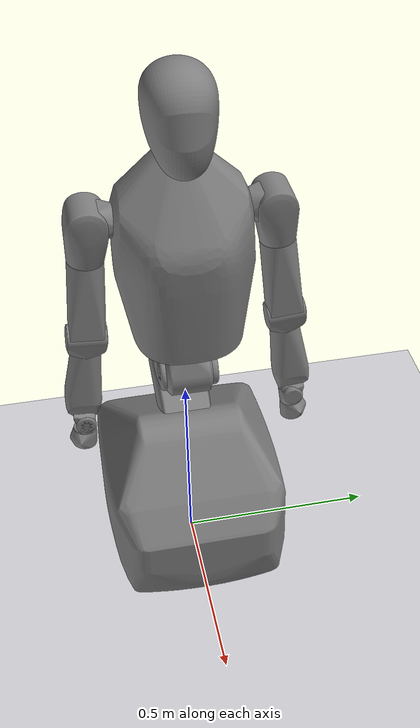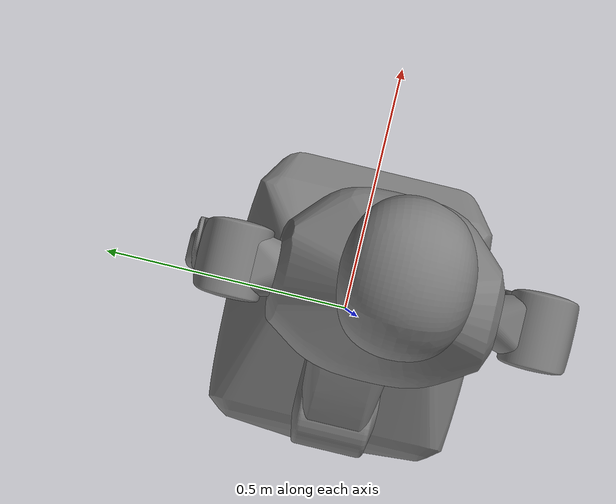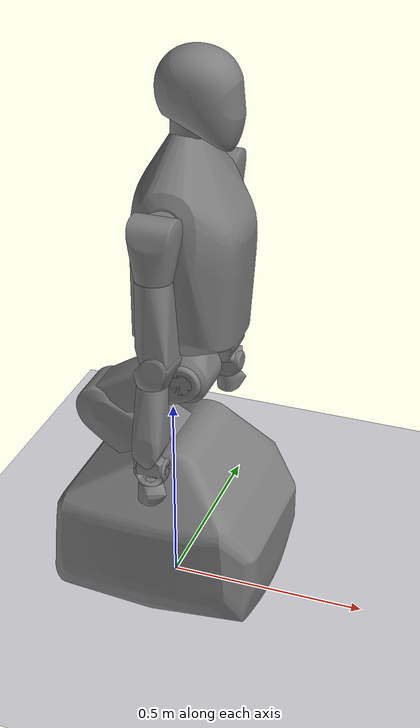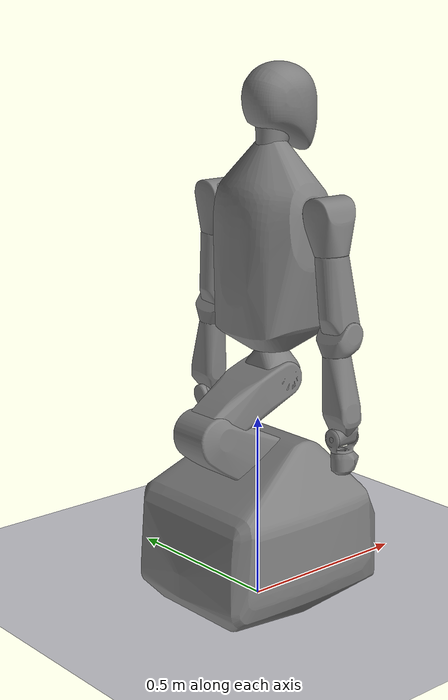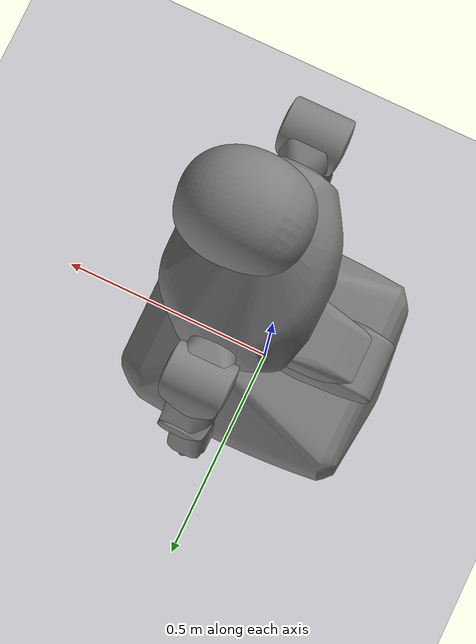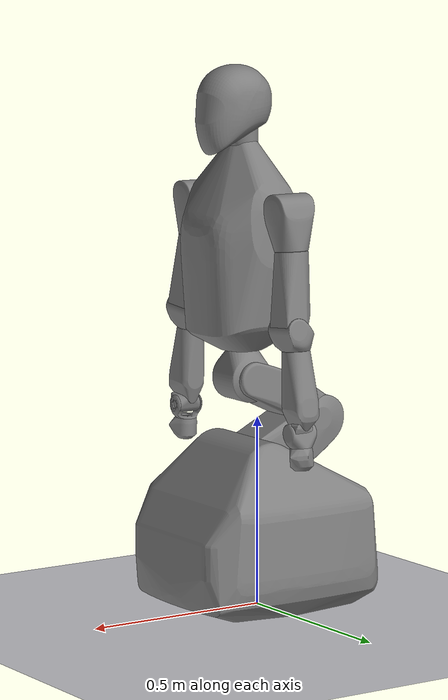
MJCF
<mujoco model="tianyi2_urdf">
  <default>
    <default class="robot">
      <default class="motor_332">
        <joint armature="0.5" damping="1" frictionloss="0.3" actuatorfrcrange="-500 500" />
        <motor ctrlrange="-500.0 500.0" />
      </default>
      <default class="motor_91">
        <joint armature="0.5" damping="1" frictionloss="0.3" actuatorfrcrange="-200 200" />
        <motor ctrlrange="-200 200.0" />
      </default>
      <default class="motor_6_3">
        <joint armature="0.1" damping="1" frictionloss="0.3" actuatorfrcrange="-20 20" />
        <motor ctrlrange="-20 20.0" />
      </default>
      <default class="motor_95">
        <joint armature="0.5" damping="1" frictionloss="0.3" actuatorfrcrange="-200 200" />
        <motor ctrlrange="-200 200.0" />
      </default>
      <default class="motor_24">
        <joint armature="0.5" damping="1" frictionloss="0.3" actuatorfrcrange="-100 100" />
        <motor ctrlrange="-100 100.0" />
      </default>
      <default class="motor_35">
        <joint armature="0.5" damping="1" frictionloss="0.3" actuatorfrcrange="-35.0 35.0" />
        <motor ctrlrange="-35.0 35.0" />
      </default>
      <default class="motor_143">
        <joint frictionloss="0.5" damping="1.0" actuatorfrcrange="-143.0 143.0" />
        <motor ctrlrange="-143.0 143.0" />
      </default>
      <default class="visual">
        <geom material="visualgeom" contype="0" conaffinity="0" group="2" />
      </default>
      <default class="collision">
        <geom material="collision_material" condim="3" contype="1" conaffinity="1" priority="1" group="1" solref="0.005 1" solimp="0.99 0.999 1e-05" friction="1 0.01 0.01" />
      </default>
    </default>
  </default>

  <compiler angle="radian" />

  <visual>
    <headlight diffuse="0.3 0.3 0.3" ambient="0.2 0.2 0.2" specular="0.1 0.1 0.1" />
    <rgba haze="0.15 0.25 0.35 1" />
    <global azimuth="120" elevation="-20" />
    <quality shadowsize="4096" />
    <map znear="0.01" zfar="50" />
  </visual>

  <asset>
    <texture name="grid_tex" type="2d" builtin="checker" rgb1="0.9 0.9 0.92" rgb2="0.75 0.75 0.78" width="512" height="512" mark="edge" markrgb="0.6 0.6 0.63" />
    <texture name="skybox_tex" type="skybox" builtin="gradient" rgb1="0.4 0.6 0.8" rgb2="0.95 0.95 1.0" width="800" height="800" />
    <material name="floor_mat" texture="grid_tex" texrepeat="8 8" texuniform="true" reflectance="0.15" specular="0.3" shininess="0.5" />
    <material name="base_material" rgba="0.752941176470588 0.752941176470588 0.752941176470588 1" />
    <material name="default_material" rgba="0.7 0.7 0.7 1" />
    <material name="collision_material" rgba="0.5 0.5 0.5 0.9" />
    <mesh name="base.STL" file="./meshes_convex/base.STL" />
    <mesh name="first_leg_pitch_link.STL" file="./meshes_convex/first_leg_pitch_link.STL" />
    <mesh name="second_leg_pitch_link.STL" file="./meshes_convex/second_leg_pitch_link.STL" />
    <mesh name="waist_pitch_link.STL" file="./meshes_convex/waist_pitch_link.STL" />
    <mesh name="waist_yaw_link.STL" file="./meshes_convex/waist_yaw_link.STL" />
    <mesh name="head_yaw_link.STL" file="./meshes_convex/head_yaw_link.STL" />
    <mesh name="head_pitch_link.STL" file="./meshes_convex/head_pitch_link.STL" />
    <mesh name="head_roll_link.STL" file="./meshes_convex/head_roll_link.STL" />
    <mesh name="camera_head_link.STL" file="./meshes_convex/camera_head_link.STL" />
    <mesh name="shoulder_pitch_l_link.STL" file="./meshes_convex/shoulder_pitch_l_link.STL" />
    <mesh name="shoulder_roll_l_link.STL" file="./meshes_convex/shoulder_roll_l_link.STL" />
    <mesh name="shoulder_yaw_l_link.STL" file="./meshes_convex/shoulder_yaw_l_link.STL" />
    <mesh name="elbow_pitch_l_link.STL" file="./meshes_convex/elbow_pitch_l_link.STL" />
    <mesh name="elbow_yaw_l_link.STL" file="./meshes_convex/elbow_yaw_l_link.STL" />
    <mesh name="wrist_pitch_l_link.STL" file="./meshes_convex/wrist_pitch_l_link.STL" />
    <mesh name="wrist_roll_l_link.STL" file="./meshes_convex/wrist_roll_l_link.STL" />
    <mesh name="left_tcp_link.STL" file="./meshes_convex/left_tcp_link.STL" />
    <mesh name="shoulder_pitch_r_link.STL" file="./meshes_convex/shoulder_pitch_r_link.STL" />
    <mesh name="shoulder_roll_r_link.STL" file="./meshes_convex/shoulder_roll_r_link.STL" />
    <mesh name="shoulder_yaw_r_link.STL" file="./meshes_convex/shoulder_yaw_r_link.STL" />
    <mesh name="elbow_pitch_r_link.STL" file="./meshes_convex/elbow_pitch_r_link.STL" />
    <mesh name="elbow_yaw_r_link.STL" file="./meshes_convex/elbow_yaw_r_link.STL" />
    <mesh name="wrist_pitch_r_link.STL" file="./meshes_convex/wrist_pitch_r_link.STL" />
    <mesh name="wrist_roll_r_link.STL" file="./meshes_convex/wrist_roll_r_link.STL" />
    <mesh name="right_tcp_link.STL" file="./meshes_convex/right_tcp_link.STL" />
  </asset>

  <worldbody>
    <!-- 灯光 -->
    <light name="top_light" pos="0 0 4" dir="0 0 -1" diffuse="0.6 0.6 0.6" specular="0.3 0.3 0.3" directional="true" castshadow="true" />
    <light name="front_light" pos="2 2 3" dir="-0.4 -0.4 -0.8" diffuse="0.4 0.4 0.45" specular="0.2 0.2 0.2" directional="false" castshadow="true" />
    <light name="back_light" pos="-2 -2 3" dir="0.4 0.4 -0.8" diffuse="0.25 0.25 0.3" specular="0.1 0.1 0.1" directional="false" castshadow="false" />

    <!-- 地板 -->
    <geom name="floor" type="plane" size="10 10 0.1" pos="0 0 0" quat="1 0 0 0" material="floor_mat" friction="1 0.005 0.0001" condim="3" />

    <body name="base" pos="0.00000000 0.00000000 0.00000000" quat="1 0 0 0" childclass="robot">
      <inertial pos="-0.00067 -0.002625 0.150395" quat="1.0 0.0 0.0 0.0" mass="47.555667" diaginertia="1.277779 1.293166 1.385346" />
      <geom name="base_collision" pos="0 0 0" quat="1.0 0.0 0.0 0.0" type="mesh" mesh="base.STL" class="collision" />
      <geom name="base_visual" pos="0 0 0" quat="1.0 0.0 0.0 0.0" material="base_material" type="mesh" mesh="base.STL" class="visual" />
      <body name="first_leg_pitch_link" pos="0.049182 0 0.37" quat="1.0 0.0 0.0 0.0">
        <joint name="first_leg_pitch_joint" type="hinge" ref="0.0" class="motor_332" range="-0.41887902047863906 0.9075712110370514" axis="0 1 0" />
        <inertial pos="-0.105847 -0.000632 0.041305" quat="1.0 0.0 0.0 0.0" mass="2.460134" diaginertia="0.012918 0.028707 0.027239" />
        <geom name="first_leg_pitch_link_collision" pos="0 0 0" quat="1.0 0.0 0.0 0.0" type="mesh" mesh="first_leg_pitch_link.STL" class="collision" />
        <geom name="first_leg_pitch_link_visual" pos="0 0 0" quat="1.0 0.0 0.0 0.0" material="base_material" type="mesh" mesh="first_leg_pitch_link.STL" class="visual" />
        <body name="second_leg_pitch_link" pos="-0.20785 0 0.12" quat="1.0 0.0 0.0 0.0">
          <joint name="second_leg_pitch_joint" type="hinge" ref="0.0" class="motor_332" range="-1.7453292519943295 0.5061454830783556" axis="0 1 0" />
          <inertial pos="0.056775 0.000389 0.045258" quat="1.0 0.0 0.0 0.0" mass="2.430846" diaginertia="0.011853 0.025086 0.022169" />
          <geom name="second_leg_pitch_link_collision" pos="0 0 0" quat="1.0 0.0 0.0 0.0" type="mesh" mesh="second_leg_pitch_link.STL" class="collision" />
          <geom name="second_leg_pitch_link_visual" pos="0 0 0" quat="1.0 0.0 0.0 0.0" material="base_material" type="mesh" mesh="second_leg_pitch_link.STL" class="visual" />
          <body name="waist_pitch_link" pos="0.20785 0 0.12" quat="1.0 0.0 0.0 0.0">
            <joint name="waist_pitch_joint" type="hinge" ref="0.0" class="motor_332" range="-0.7853981633974483 2.0943951023931953" axis="0 1 0" />
            <inertial pos="8e-06 0.012369 0.001276" quat="1.0 0.0 0.0 0.0" mass="3.38238" diaginertia="0.005589 0.006064 0.005334" />
            <geom name="waist_pitch_link_collision" pos="0 0 0" quat="1.0 0.0 0.0 0.0" type="mesh" mesh="waist_pitch_link.STL" class="collision" />
            <geom name="waist_pitch_link_visual" pos="0 0 0" quat="1.0 0.0 0.0 0.0" material="base_material" type="mesh" mesh="waist_pitch_link.STL" class="visual" />
            <body name="waist_yaw_link" pos="0 0 0.07" quat="1.0 0.0 0.0 0.0">
              <joint name="waist_yaw_joint" type="hinge" ref="0.0" class="motor_143" range="-2.9670597283903604 3.141592653589793" axis="0 0 1" />
              <inertial pos="0.009196 -0.000592 0.251379" quat="1.0 0.0 0.0 0.0" mass="13.795395" diaginertia="0.372395 0.331609 0.127753" />
              <geom name="waist_yaw_link_collision" pos="0 0 0" quat="1.0 0.0 0.0 0.0" type="mesh" mesh="waist_yaw_link.STL" class="collision" />
              <geom name="waist_yaw_link_visual" pos="0 0 0" quat="1.0 0.0 0.0 0.0" material="base_material" type="mesh" mesh="waist_yaw_link.STL" class="visual" />
              <body name="head_yaw_link" pos="-0.002 0 0.56508" quat="1.0 0.0 0.0 0.0">
                <joint name="head_yaw_joint" type="hinge" ref="0.0" class="motor_6_3" range="-1.5707963267948966 1.5707963267948966" axis="0 0 1" />
                <inertial pos="-0.000202 0.000454 0.007248" quat="1.0 0.0 0.0 0.0" mass="0.088397" diaginertia="9.5e-05 7.6e-05 0.000106" />
                <geom name="head_yaw_link_collision" pos="0 0 0" quat="1.0 0.0 0.0 0.0" type="mesh" mesh="head_yaw_link.STL" class="collision" />
                <geom name="head_yaw_link_visual" pos="0 0 0" quat="1.0 0.0 0.0 0.0" material="base_material" type="mesh" mesh="head_yaw_link.STL" class="visual" />
                <body name="head_pitch_link" pos="0.01455 0 0.0304" quat="0.991444821419641 0.0 0.1305264957017392 0.0">
                  <joint name="head_pitch_joint" type="hinge" ref="0.0" class="motor_6_3" range="-0.4363323129985824 0.4363323129985824" axis="0 1 0" />
                  <inertial pos="-0.000274 0.004118 2.3e-05" quat="1.0 0.0 0.0 0.0" mass="0.23046" diaginertia="9.2e-05 5.4e-05 9.5e-05" />
                  <geom name="head_pitch_link_collision" pos="0 0 0" quat="1.0 0.0 0.0 0.0" type="mesh" mesh="head_pitch_link.STL" class="collision" />
                  <geom name="head_pitch_link_visual" pos="0 0 0" quat="1.0 0.0 0.0 0.0" material="base_material" type="mesh" mesh="head_pitch_link.STL" class="visual" />
                  <body name="head_roll_link" pos="0 0 0" quat="1.0 0.0 0.0 0.0">
                    <joint name="head_roll_joint" type="hinge" ref="0.0" class="motor_6_3" range="-0.4537856055185257 0.4537856055185257" axis="1 0 0" />
                    <inertial pos="0.022467 0.001208 0.053952" quat="1.0 0.0 0.0 0.0" mass="0.844627" diaginertia="0.00235 0.003365 0.002875" />
                    <geom name="head_roll_link_collision" pos="0 0 0" quat="1.0 0.0 0.0 0.0" type="mesh" mesh="head_roll_link.STL" class="collision" />
                    <geom name="head_roll_link_visual" pos="0 0 0" quat="1.0 0.0 0.0 0.0" material="base_material" type="mesh" mesh="head_roll_link.STL" class="visual" />
                    <body name="camera_head_link" pos="0.075288 0.010935 0.07441" quat="0.4304573419693023 -0.5609854188320508 0.5609874794503387 -0.43045892313031153">
                      <inertial pos="0.010986 -0.000307 -0.016475" quat="1.0 0.0 0.0 0.0" mass="0.1" diaginertia="1.6e-05 8e-05 7.7e-05" />
                      <geom name="camera_head_link_collision" pos="0 0 0" quat="1.0 0.0 0.0 0.0" type="mesh" mesh="camera_head_link.STL" class="collision" />
                      <geom name="camera_head_link_visual" pos="0 0 0" quat="1.0 0.0 0.0 0.0" material="base_material" type="mesh" mesh="camera_head_link.STL" class="visual" />
                    </body>
                  </body>
                </body>
              </body>
              <body name="shoulder_pitch_l_link" pos="0 0.14539 0.37721" quat="0.9990482316709891 0.0436191562856228 0.0 0.0">
                <joint name="shoulder_pitch_l_joint" type="hinge" ref="0.0" class="motor_91" range="-2.9670597283903604 2.9670597283903604" axis="0 1 0" />
                <inertial pos="0.007494 0.064184 -2e-05" quat="1.0 0.0 0.0 0.0" mass="1.032698" diaginertia="0.001025 0.001078 0.001247" />
                <geom name="shoulder_pitch_l_link_collision" pos="0 0 0" quat="1.0 0.0 0.0 0.0" type="mesh" mesh="shoulder_pitch_l_link.STL" class="collision" />
                <geom name="shoulder_pitch_l_link_visual" pos="0 0 0" quat="1.0 0.0 0.0 0.0" material="base_material" type="mesh" mesh="shoulder_pitch_l_link.STL" class="visual" />
                <body name="shoulder_roll_l_link" pos="0 0.068 0" quat="1.0 0.0 0.0 0.0">
                  <joint name="shoulder_roll_l_joint" type="hinge" ref="0.0" class="motor_95" range="-0.2617993877991494 2.6179938779914944" axis="1 0 0" />
                  <inertial pos="0.002389 0.002259 -0.048236" quat="1.0 0.0 0.0 0.0" mass="0.440997" diaginertia="0.001001 0.001313 0.000911" />
                  <geom name="shoulder_roll_l_link_collision" pos="0 0 0" quat="1.0 0.0 0.0 0.0" type="mesh" mesh="shoulder_roll_l_link.STL" class="collision" />
                  <geom name="shoulder_roll_l_link_visual" pos="0 0 0" quat="1.0 0.0 0.0 0.0" material="base_material" type="mesh" mesh="shoulder_roll_l_link.STL" class="visual" />
                  <body name="shoulder_yaw_l_link" pos="0 0 -0.1025" quat="1.0 0.0 0.0 0.0">
                    <joint name="shoulder_yaw_l_joint" type="hinge" ref="0.0" class="motor_35" range="-2.9670597283903604 2.9670597283903604" axis="0 0 1" />
                    <inertial pos="0.008319 0.002686 -0.112525" quat="1.0 0.0 0.0 0.0" mass="1.365033" diaginertia="0.009637 0.0096 0.001331" />
                    <geom name="shoulder_yaw_l_link_collision" pos="0 0 0" quat="1.0 0.0 0.0 0.0" type="mesh" mesh="shoulder_yaw_l_link.STL" class="collision" />
                    <geom name="shoulder_yaw_l_link_visual" pos="0 0 0" quat="1.0 0.0 0.0 0.0" material="base_material" type="mesh" mesh="shoulder_yaw_l_link.STL" class="visual" />
                    <body name="elbow_pitch_l_link" pos="0.02 0 -0.1975" quat="1.0 0.0 0.0 0.0">
                      <joint name="elbow_pitch_l_joint" type="hinge" ref="0.0" class="motor_35" range="-2.6179938779914944 0.2617993877991494" axis="0 1 0" />
                      <inertial pos="-0.014694 -7.2e-05 -0.026081" quat="1.0 0.0 0.0 0.0" mass="0.246311" diaginertia="0.000381 0.000222 0.000401" />
                      <geom name="elbow_pitch_l_link_collision" pos="0 0 0" quat="1.0 0.0 0.0 0.0" type="mesh" mesh="elbow_pitch_l_link.STL" class="collision" />
                      <geom name="elbow_pitch_l_link_visual" pos="0 0 0" quat="1.0 0.0 0.0 0.0" material="base_material" type="mesh" mesh="elbow_pitch_l_link.STL" class="visual" />
                      <body name="elbow_yaw_l_link" pos="-0.02 0 -0.0543" quat="1.0 0.0 0.0 0.0">
                        <joint name="elbow_yaw_l_joint" type="hinge" ref="0.0" class="motor_24" range="-2.9670597283903604 2.9670597283903604" axis="0 0 1" />
                        <inertial pos="0.000158 0.001503 -0.069535" quat="1.0 0.0 0.0 0.0" mass="0.986828" diaginertia="0.003108 0.003035 0.00058" />
                        <geom name="elbow_yaw_l_link_collision" pos="0 0 0" quat="1.0 0.0 0.0 0.0" type="mesh" mesh="elbow_yaw_l_link.STL" class="collision" />
                        <geom name="elbow_yaw_l_link_visual" pos="0 0 0" quat="1.0 0.0 0.0 0.0" material="base_material" type="mesh" mesh="elbow_yaw_l_link.STL" class="visual" />
                        <body name="wrist_pitch_l_link" pos="0 0.002 -0.1887" quat="1.0 0.0 0.0 0.0">
                          <joint name="wrist_pitch_l_joint" type="hinge" ref="0.0" class="motor_6_3" range="-0.7853981633974483 1.0471975511965976" axis="0 1 0" />
                          <inertial pos="0.005362 0.00064 -0.018812" quat="1.0 0.0 0.0 0.0" mass="0.262007" diaginertia="7.1e-05 0.000112 0.000111" />
                          <geom name="wrist_pitch_l_link_collision" pos="0 0 0" quat="1.0 0.0 0.0 0.0" type="mesh" mesh="wrist_pitch_l_link.STL" class="collision" />
                          <geom name="wrist_pitch_l_link_visual" pos="0 0 0" quat="1.0 0.0 0.0 0.0" material="base_material" type="mesh" mesh="wrist_pitch_l_link.STL" class="visual" />
                          <body name="wrist_roll_l_link" pos="5.0485E-05 0 -0.02" quat="1.0 0.0 0.0 0.0">
                            <joint name="wrist_roll_l_joint" type="hinge" ref="0.0" class="motor_6_3" range="-1.6580627893946132 1.3089969389957472" axis="1 0 0" />
                            <inertial pos="0.000801 8.4e-05 -0.029302" quat="1.0 0.0 0.0 0.0" mass="0.131751" diaginertia="6.9e-05 0.000116 0.00011" />
                            <geom name="wrist_roll_l_link_collision" pos="0 0 0" quat="1.0 0.0 0.0 0.0" type="mesh" mesh="wrist_roll_l_link.STL" class="collision" />
                            <geom name="wrist_roll_l_link_visual" pos="0 0 0" quat="1.0 0.0 0.0 0.0" material="base_material" type="mesh" mesh="wrist_roll_l_link.STL" class="visual" />
                            <body name="left_tcp_link" pos="0 3.5454E-05 -0.084799" quat="1.0 0.0 0.0 0.0">
                              <inertial pos="0.000238 0.000502 0.021714" quat="1.0 0.0 0.0 0.0" mass="0.252604" diaginertia="0.000124 0.000119 0.000132" />
                              <geom name="left_tcp_link_collision" pos="0 0 0" quat="1.0 0.0 0.0 0.0" type="mesh" mesh="left_tcp_link.STL" class="collision" />
                              <geom name="left_tcp_link_visual" pos="0 0 0" quat="1.0 0.0 0.0 0.0" material="base_material" type="mesh" mesh="left_tcp_link.STL" class="visual" />
                            </body>
                          </body>
                        </body>
                      </body>
                    </body>
                  </body>
                </body>
              </body>
              <body name="shoulder_pitch_r_link" pos="0 -0.14539 0.37721" quat="0.9990482316709891 -0.0436191562856228 0.0 0.0">
                <joint name="shoulder_pitch_r_joint" type="hinge" ref="0.0" class="motor_91" range="-2.9670597283903604 2.9670597283903604" axis="0 1 0" />
                <inertial pos="0.007494 -0.064184 -2e-05" quat="1.0 0.0 0.0 0.0" mass="1.032698" diaginertia="0.001025 0.001078 0.001247" />
                <geom name="shoulder_pitch_r_link_collision" pos="0 0 0" quat="1.0 0.0 0.0 0.0" type="mesh" mesh="shoulder_pitch_r_link.STL" class="collision" />
                <geom name="shoulder_pitch_r_link_visual" pos="0 0 0" quat="1.0 0.0 0.0 0.0" material="base_material" type="mesh" mesh="shoulder_pitch_r_link.STL" class="visual" />
                <body name="shoulder_roll_r_link" pos="0 -0.068 0" quat="1.0 0.0 0.0 0.0">
                  <joint name="shoulder_roll_r_joint" type="hinge" ref="0.0" class="motor_95" range="-2.6179938779914944 0.2617993877991494" axis="1 0 0" />
                  <inertial pos="0.002389 -0.002259 -0.048236" quat="1.0 0.0 0.0 0.0" mass="0.440997" diaginertia="0.001001 0.001313 0.000911" />
                  <geom name="shoulder_roll_r_link_collision" pos="0 0 0" quat="1.0 0.0 0.0 0.0" type="mesh" mesh="shoulder_roll_r_link.STL" class="collision" />
                  <geom name="shoulder_roll_r_link_visual" pos="0 0 0" quat="1.0 0.0 0.0 0.0" material="base_material" type="mesh" mesh="shoulder_roll_r_link.STL" class="visual" />
                  <body name="shoulder_yaw_r_link" pos="0 0 -0.1025" quat="1.0 0.0 0.0 0.0">
                    <joint name="shoulder_yaw_r_joint" type="hinge" ref="0.0" class="motor_35" range="-2.9670597283903604 2.9670597283903604" axis="0 0 1" />
                    <inertial pos="0.008319 -0.002686 -0.112525" quat="1.0 0.0 0.0 0.0" mass="1.365033" diaginertia="0.009637 0.0096 0.001331" />
                    <geom name="shoulder_yaw_r_link_collision" pos="0 0 0" quat="1.0 0.0 0.0 0.0" type="mesh" mesh="shoulder_yaw_r_link.STL" class="collision" />
                    <geom name="shoulder_yaw_r_link_visual" pos="0 0 0" quat="1.0 0.0 0.0 0.0" material="base_material" type="mesh" mesh="shoulder_yaw_r_link.STL" class="visual" />
                    <body name="elbow_pitch_r_link" pos="0.02 0 -0.1975" quat="1.0 0.0 0.0 0.0">
                      <joint name="elbow_pitch_r_joint" type="hinge" ref="0.0" class="motor_35" range="-2.6179938779914944 0.2617993877991494" axis="0 1 0" />
                      <inertial pos="-0.014694 7.2e-05 -0.026081" quat="1.0 0.0 0.0 0.0" mass="0.246311" diaginertia="0.000381 0.000222 0.000401" />
                      <geom name="elbow_pitch_r_link_collision" pos="0 0 0" quat="1.0 0.0 0.0 0.0" type="mesh" mesh="elbow_pitch_r_link.STL" class="collision" />
                      <geom name="elbow_pitch_r_link_visual" pos="0 0 0" quat="1.0 0.0 0.0 0.0" material="base_material" type="mesh" mesh="elbow_pitch_r_link.STL" class="visual" />
                      <body name="elbow_yaw_r_link" pos="-0.02 0 -0.0543" quat="1.0 0.0 0.0 0.0">
                        <joint name="elbow_yaw_r_joint" type="hinge" ref="0.0" class="motor_24" range="-2.9670597283903604 2.9670597283903604" axis="0 0 1" />
                        <inertial pos="0.000158 -0.001503 -0.069535" quat="1.0 0.0 0.0 0.0" mass="0.986828" diaginertia="0.003108 0.003035 0.00058" />
                        <geom name="elbow_yaw_r_link_collision" pos="0 0 0" quat="1.0 0.0 0.0 0.0" type="mesh" mesh="elbow_yaw_r_link.STL" class="collision" />
                        <geom name="elbow_yaw_r_link_visual" pos="0 0 0" quat="1.0 0.0 0.0 0.0" material="base_material" type="mesh" mesh="elbow_yaw_r_link.STL" class="visual" />
                        <body name="wrist_pitch_r_link" pos="0 -0.002 -0.1887" quat="1.0 0.0 0.0 0.0">
                          <joint name="wrist_pitch_r_joint" type="hinge" ref="0.0" class="motor_6_3" range="-0.7853981633974483 1.0471975511965976" axis="0 1 0" />
                          <inertial pos="0.005362 -0.00064 -0.018812" quat="1.0 0.0 0.0 0.0" mass="0.262007" diaginertia="7.1e-05 0.000112 0.000111" />
                          <geom name="wrist_pitch_r_link_collision" pos="0 0 0" quat="1.0 0.0 0.0 0.0" type="mesh" mesh="wrist_pitch_r_link.STL" class="collision" />
                          <geom name="wrist_pitch_r_link_visual" pos="0 0 0" quat="1.0 0.0 0.0 0.0" material="base_material" type="mesh" mesh="wrist_pitch_r_link.STL" class="visual" />
                          <body name="wrist_roll_r_link" pos="5.0485E-05 0 -0.02" quat="1.0 0.0 0.0 0.0">
                            <joint name="wrist_roll_r_joint" type="hinge" ref="0.0" class="motor_6_3" range="-1.3089969389957472 1.6580627893946132" axis="1 0 0" />
                            <inertial pos="0.000801 -8.4e-05 -0.029302" quat="1.0 0.0 0.0 0.0" mass="0.131751" diaginertia="6.9e-05 0.000116 0.00011" />
                            <geom name="wrist_roll_r_link_collision" pos="0 0 0" quat="1.0 0.0 0.0 0.0" type="mesh" mesh="wrist_roll_r_link.STL" class="collision" />
                            <geom name="wrist_roll_r_link_visual" pos="0 0 0" quat="1.0 0.0 0.0 0.0" material="base_material" type="mesh" mesh="wrist_roll_r_link.STL" class="visual" />
                            <body name="right_tcp_link" pos="0 -3.5405E-05 -0.084799" quat="1.0 0.0 0.0 0.0">
                              <inertial pos="0.000238 -0.000502 0.021714" quat="1.0 0.0 0.0 0.0" mass="0.252604" diaginertia="0.000124 0.000119 0.000132" />
                              <geom name="right_tcp_link_collision" pos="0 0 0" quat="1.0 0.0 0.0 0.0" type="mesh" mesh="right_tcp_link.STL" class="collision" />
                              <geom name="right_tcp_link_visual" pos="0 0 0" quat="1.0 0.0 0.0 0.0" material="base_material" type="mesh" mesh="right_tcp_link.STL" class="visual" />
                            </body>
                          </body>
                        </body>
                      </body>
                    </body>
                  </body>
                </body>
              </body>
            </body>
          </body>
        </body>
      </body>
      <site name="base_site" pos="0 0 0" quat="1 0 0 0" />
      <camera name="front_camera" mode="track" fovy="90.0" quat="4.329780281177467e-17 4.329780281177466e-17 0.7071067811865475 0.7071067811865476" pos="0.0 2.0 0.5" />
      <camera name="side_camera" mode="track" fovy="90.0" quat="-0.5 -0.4999999999999999 0.5 0.5000000000000001" pos="-2.0 0.0 0.5" />
    </body>
  </worldbody>

  <actuator>
    <motor name="first_leg_pitch_joint_ctrl" joint="first_leg_pitch_joint" class="motor_332" />
    <motor name="second_leg_pitch_joint_ctrl" joint="second_leg_pitch_joint" class="motor_332" />
    <motor name="waist_pitch_joint_ctrl" joint="waist_pitch_joint" class="motor_332" />
    <motor name="waist_yaw_joint_ctrl" joint="waist_yaw_joint" class="motor_143" />
    <motor name="head_yaw_joint_ctrl" joint="head_yaw_joint" class="motor_6_3" />
    <motor name="head_pitch_joint_ctrl" joint="head_pitch_joint" class="motor_6_3" />
    <motor name="head_roll_joint_ctrl" joint="head_roll_joint" class="motor_6_3" />
    <motor name="shoulder_pitch_l_joint_ctrl" joint="shoulder_pitch_l_joint" class="motor_91" />
    <motor name="shoulder_roll_l_joint_ctrl" joint="shoulder_roll_l_joint" class="motor_95" />
    <motor name="shoulder_yaw_l_joint_ctrl" joint="shoulder_yaw_l_joint" class="motor_35" />
    <motor name="elbow_pitch_l_joint_ctrl" joint="elbow_pitch_l_joint" class="motor_35" />
    <motor name="elbow_yaw_l_joint_ctrl" joint="elbow_yaw_l_joint" class="motor_24" />
    <motor name="wrist_pitch_l_joint_ctrl" joint="wrist_pitch_l_joint" class="motor_6_3" />
    <motor name="wrist_roll_l_joint_ctrl" joint="wrist_roll_l_joint" class="motor_6_3" />
    <motor name="shoulder_pitch_r_joint_ctrl" joint="shoulder_pitch_r_joint" class="motor_91" />
    <motor name="shoulder_roll_r_joint_ctrl" joint="shoulder_roll_r_joint" class="motor_95" />
    <motor name="shoulder_yaw_r_joint_ctrl" joint="shoulder_yaw_r_joint" class="motor_35" />
    <motor name="elbow_pitch_r_joint_ctrl" joint="elbow_pitch_r_joint" class="motor_35" />
    <motor name="elbow_yaw_r_joint_ctrl" joint="elbow_yaw_r_joint" class="motor_24" />
    <motor name="wrist_pitch_r_joint_ctrl" joint="wrist_pitch_r_joint" class="motor_6_3" />
    <motor name="wrist_roll_r_joint_ctrl" joint="wrist_roll_r_joint" class="motor_6_3" />
  </actuator>

  <contact>
    <exclude body1="base" body2="first_leg_pitch_link" />
    <exclude body1="first_leg_pitch_link" body2="second_leg_pitch_link" />
    <exclude body1="second_leg_pitch_link" body2="waist_pitch_link" />
    <exclude body1="waist_pitch_link" body2="waist_yaw_link" />
    <exclude body1="waist_yaw_link" body2="head_yaw_link" />
    <exclude body1="head_yaw_link" body2="head_pitch_link" />
    <exclude body1="head_pitch_link" body2="head_roll_link" />
    <exclude body1="head_roll_link" body2="camera_head_link" />
    <exclude body1="waist_yaw_link" body2="head_roll_link" />
    <exclude body1="waist_yaw_link" body2="head_pitch_link" />
    <exclude body1="head_yaw_link" body2="head_roll_link" />
    <exclude body1="head_yaw_link" body2="camera_head_link" />
    <exclude body1="head_pitch_link" body2="camera_head_link" />
    <exclude body1="waist_yaw_link" body2="shoulder_pitch_l_link" />
    <exclude body1="shoulder_pitch_l_link" body2="shoulder_roll_l_link" />
    <exclude body1="shoulder_roll_l_link" body2="shoulder_yaw_l_link" />
    <exclude body1="shoulder_yaw_l_link" body2="elbow_pitch_l_link" />
    <exclude body1="elbow_pitch_l_link" body2="elbow_yaw_l_link" />
    <exclude body1="elbow_yaw_l_link" body2="wrist_pitch_l_link" />
    <exclude body1="elbow_yaw_l_link" body2="wrist_roll_l_link" />
    <exclude body1="wrist_pitch_l_link" body2="wrist_roll_l_link" />
    <exclude body1="wrist_pitch_l_link" body2="left_tcp_link" />
    <exclude body1="wrist_roll_l_link" body2="left_tcp_link" />
    <exclude body1="waist_yaw_link" body2="shoulder_pitch_r_link" />
    <exclude body1="shoulder_pitch_r_link" body2="shoulder_roll_r_link" />
    <exclude body1="shoulder_roll_r_link" body2="shoulder_yaw_r_link" />
    <exclude body1="shoulder_yaw_r_link" body2="elbow_pitch_r_link" />
    <exclude body1="elbow_pitch_r_link" body2="elbow_yaw_r_link" />
    <exclude body1="elbow_yaw_r_link" body2="wrist_pitch_r_link" />
    <exclude body1="elbow_yaw_r_link" body2="wrist_roll_r_link" />
    <exclude body1="wrist_pitch_r_link" body2="wrist_roll_r_link" />
    <exclude body1="wrist_pitch_r_link" body2="right_tcp_link" />
    <exclude body1="wrist_roll_r_link" body2="right_tcp_link" />
  </contact>

  <sensor>
    <framepos name="base_site_pos" objtype="site" objname="base_site" />
    <framequat name="base_site_quat" objtype="site" objname="base_site" />
    <framelinvel name="base_site_linvel" objtype="site" objname="base_site" />
    <frameangvel name="base_site_angvel" objtype="site" objname="base_site" />
    <velocimeter name="base_site_vel" site="base_site" />
  </sensor>
</mujoco>
